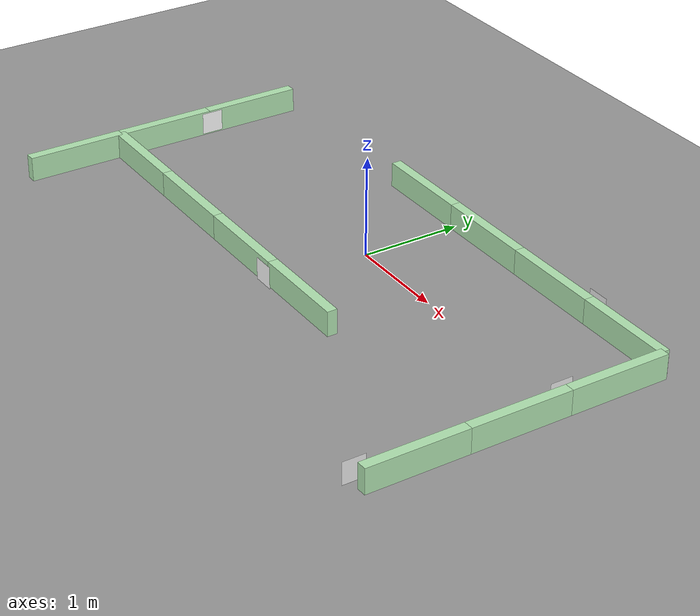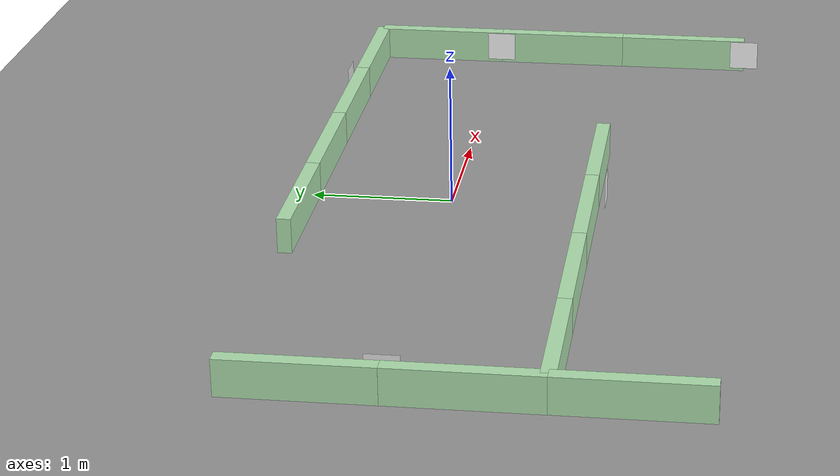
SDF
<sdf version="1.6">
 <world name="default">
  <model name="ground_plane_0">
   <static>1</static>
   <link name="link">
    <collision name="collision">
     <geometry><plane><normal>0 0 1</normal><size>100 100</size></plane></geometry>
     <surface><friction><ode><mu>100</mu><mu2>50</mu2></ode></friction></surface>
    </collision>
    <visual name="visual">
     <cast_shadows>0</cast_shadows>
     <geometry><plane><normal>0 0 1</normal><size>100 100</size></plane></geometry>
     <material>
      <script><uri>file://media/materials/scripts/gazebo.material</uri><name>Gazebo/Grey</name></script>
     </material>
    </visual>
    <velocity_decay><linear>0</linear><angular>0</angular></velocity_decay>
   </link>
   <pose>0.497681 0 0 0 -0 0</pose>
  </model>
  <model name="wall_100_25h_1">
   <link name="link">
    <inertial>
     <mass>1</mass>
     <inertia>
      <ixx>0.166667</ixx>
      <ixy>0</ixy>
      <ixz>0</ixz>
      <iyy>0.166667</iyy>
      <iyz>0</iyz>
      <izz>0.166667</izz>
     </inertia>
    </inertial>
    <visual name="visual">
     <geometry><box><size>1 0.1 0.25</size></box></geometry>
     <material>
      <script><name>Gazebo/Grey</name><uri>file://media/materials/scripts/gazebo.material</uri></script>
      <ambient>0.3 0.5 0.3 1</ambient>
      <diffuse>0.7 0.9 0.7 1</diffuse>
      <specular>0.01 0.02 0.01 1</specular>
      <emissive>0 0 0 1</emissive>
      <lighting>1</lighting>
      <shader type="vertex"><normal_map>__default__</normal_map></shader>
     </material>
    </visual>
    <collision name="collision">
     <geometry><box><size>1 0.1 0.25</size></box></geometry>
     <surface>
      <friction>
       <ode><mu>1</mu><mu2>1</mu2><fdir1>0 0 0</fdir1><slip1>0</slip1><slip2>0</slip2></ode>
       <torsional>
        <coefficient>1</coefficient>
        <patch_radius>0</patch_radius>
        <surface_radius>0</surface_radius>
        <use_patch_radius>1</use_patch_radius>
        <ode><slip>0</slip></ode>
       </torsional>
      </friction>
      <bounce><restitution_coefficient>0</restitution_coefficient><threshold>1e+06</threshold></bounce>
      <contact>
       <collide_without_contact>0</collide_without_contact>
       <collide_without_contact_bitmask>1</collide_without_contact_bitmask>
       <collide_bitmask>1</collide_bitmask>
       <ode>
        <soft_cfm>0</soft_cfm>
        <soft_erp>0.2</soft_erp>
        <kp>1e+13</kp>
        <kd>1</kd>
        <max_vel>0.01</max_vel>
        <min_depth>0</min_depth>
       </ode>
       <bullet>
        <split_impulse>1</split_impulse>
        <split_impulse_penetration_threshold>-0.01</split_impulse_penetration_threshold>
        <soft_cfm>0</soft_cfm>
        <soft_erp>0.2</soft_erp>
        <kp>1e+13</kp>
        <kd>1</kd>
       </bullet>
      </contact>
     </surface>
    </collision>
   </link>
   <static>1</static>
   <pose>-0.5 1 0.125 0.000404 -0 0</pose>
  </model>
  <model name="wall_100_25h_1_clone">
   <link name="link">
    <inertial>
     <mass>1</mass>
     <inertia>
      <ixx>0.166667</ixx>
      <ixy>0</ixy>
      <ixz>0</ixz>
      <iyy>0.166667</iyy>
      <iyz>0</iyz>
      <izz>0.166667</izz>
     </inertia>
    </inertial>
    <visual name="visual">
     <geometry><box><size>1 0.1 0.25</size></box></geometry>
     <material>
      <script><name>Gazebo/Grey</name><uri>file://media/materials/scripts/gazebo.material</uri></script>
      <ambient>0.3 0.5 0.3 1</ambient>
      <diffuse>0.7 0.9 0.7 1</diffuse>
      <specular>0.01 0.02 0.01 1</specular>
      <emissive>0 0 0 1</emissive>
      <lighting>1</lighting>
      <shader type="vertex"><normal_map>__default__</normal_map></shader>
     </material>
    </visual>
    <collision name="collision">
     <geometry><box><size>1 0.1 0.25</size></box></geometry>
     <surface>
      <friction>
       <ode><mu>1</mu><mu2>1</mu2><fdir1>0 0 0</fdir1><slip1>0</slip1><slip2>0</slip2></ode>
       <torsional>
        <coefficient>1</coefficient>
        <patch_radius>0</patch_radius>
        <surface_radius>0</surface_radius>
        <use_patch_radius>1</use_patch_radius>
        <ode><slip>0</slip></ode>
       </torsional>
      </friction>
      <bounce><restitution_coefficient>0</restitution_coefficient><threshold>1e+06</threshold></bounce>
      <contact>
       <collide_without_contact>0</collide_without_contact>
       <collide_without_contact_bitmask>1</collide_without_contact_bitmask>
       <collide_bitmask>1</collide_bitmask>
       <ode>
        <soft_cfm>0</soft_cfm>
        <soft_erp>0.2</soft_erp>
        <kp>1e+13</kp>
        <kd>1</kd>
        <max_vel>0.01</max_vel>
        <min_depth>0</min_depth>
       </ode>
       <bullet>
        <split_impulse>1</split_impulse>
        <split_impulse_penetration_threshold>-0.01</split_impulse_penetration_threshold>
        <soft_cfm>0</soft_cfm>
        <soft_erp>0.2</soft_erp>
        <kp>1e+13</kp>
        <kd>1</kd>
       </bullet>
      </contact>
     </surface>
    </collision>
   </link>
   <static>1</static>
   <pose>0.5 1 0.125 0 -0 0</pose>
  </model>
  <model name="wall_100_25h_1_clone_0">
   <link name="link">
    <inertial>
     <mass>1</mass>
     <inertia>
      <ixx>0.166667</ixx>
      <ixy>0</ixy>
      <ixz>0</ixz>
      <iyy>0.166667</iyy>
      <iyz>0</iyz>
      <izz>0.166667</izz>
     </inertia>
    </inertial>
    <visual name="visual">
     <geometry><box><size>1 0.1 0.25</size></box></geometry>
     <material>
      <script><name>Gazebo/Grey</name><uri>file://media/materials/scripts/gazebo.material</uri></script>
      <ambient>0.3 0.5 0.3 1</ambient>
      <diffuse>0.7 0.9 0.7 1</diffuse>
      <specular>0.01 0.02 0.01 1</specular>
      <emissive>0 0 0 1</emissive>
      <lighting>1</lighting>
      <shader type="vertex"><normal_map>__default__</normal_map></shader>
     </material>
    </visual>
    <collision name="collision">
     <geometry><box><size>1 0.1 0.25</size></box></geometry>
     <surface>
      <friction>
       <ode><mu>1</mu><mu2>1</mu2><fdir1>0 0 0</fdir1><slip1>0</slip1><slip2>0</slip2></ode>
       <torsional>
        <coefficient>1</coefficient>
        <patch_radius>0</patch_radius>
        <surface_radius>0</surface_radius>
        <use_patch_radius>1</use_patch_radius>
        <ode><slip>0</slip></ode>
       </torsional>
      </friction>
      <bounce><restitution_coefficient>0</restitution_coefficient><threshold>1e+06</threshold></bounce>
      <contact>
       <collide_without_contact>0</collide_without_contact>
       <collide_without_contact_bitmask>1</collide_without_contact_bitmask>
       <collide_bitmask>1</collide_bitmask>
       <ode>
        <soft_cfm>0</soft_cfm>
        <soft_erp>0.2</soft_erp>
        <kp>1e+13</kp>
        <kd>1</kd>
        <max_vel>0.01</max_vel>
        <min_depth>0</min_depth>
       </ode>
       <bullet>
        <split_impulse>1</split_impulse>
        <split_impulse_penetration_threshold>-0.01</split_impulse_penetration_threshold>
        <soft_cfm>0</soft_cfm>
        <soft_erp>0.2</soft_erp>
        <kp>1e+13</kp>
        <kd>1</kd>
       </bullet>
      </contact>
     </surface>
    </collision>
   </link>
   <static>1</static>
   <pose>1.5 1 0.125 0.000404 -0 0</pose>
  </model>
  <model name="wall_100_25h_1_clone_1">
   <link name="link">
    <inertial>
     <mass>1</mass>
     <inertia>
      <ixx>0.166667</ixx>
      <ixy>0</ixy>
      <ixz>0</ixz>
      <iyy>0.166667</iyy>
      <iyz>0</iyz>
      <izz>0.166667</izz>
     </inertia>
    </inertial>
    <visual name="visual">
     <geometry><box><size>1 0.1 0.25</size></box></geometry>
     <material>
      <script><name>Gazebo/Grey</name><uri>file://media/materials/scripts/gazebo.material</uri></script>
      <ambient>0.3 0.5 0.3 1</ambient>
      <diffuse>0.7 0.9 0.7 1</diffuse>
      <specular>0.01 0.02 0.01 1</specular>
      <emissive>0 0 0 1</emissive>
      <lighting>1</lighting>
      <shader type="vertex"><normal_map>__default__</normal_map></shader>
     </material>
    </visual>
    <collision name="collision">
     <geometry><box><size>1 0.1 0.25</size></box></geometry>
     <surface>
      <friction>
       <ode><mu>1</mu><mu2>1</mu2><fdir1>0 0 0</fdir1><slip1>0</slip1><slip2>0</slip2></ode>
       <torsional>
        <coefficient>1</coefficient>
        <patch_radius>0</patch_radius>
        <surface_radius>0</surface_radius>
        <use_patch_radius>1</use_patch_radius>
        <ode><slip>0</slip></ode>
       </torsional>
      </friction>
      <bounce><restitution_coefficient>0</restitution_coefficient><threshold>1e+06</threshold></bounce>
      <contact>
       <collide_without_contact>0</collide_without_contact>
       <collide_without_contact_bitmask>1</collide_without_contact_bitmask>
       <collide_bitmask>1</collide_bitmask>
       <ode>
        <soft_cfm>0</soft_cfm>
        <soft_erp>0.2</soft_erp>
        <kp>1e+13</kp>
        <kd>1</kd>
        <max_vel>0.01</max_vel>
        <min_depth>0</min_depth>
       </ode>
       <bullet>
        <split_impulse>1</split_impulse>
        <split_impulse_penetration_threshold>-0.01</split_impulse_penetration_threshold>
        <soft_cfm>0</soft_cfm>
        <soft_erp>0.2</soft_erp>
        <kp>1e+13</kp>
        <kd>1</kd>
       </bullet>
      </contact>
     </surface>
    </collision>
   </link>
   <static>1</static>
   <pose>-0.5 -1 0.125 0.000404 -0 0</pose>
  </model>
  <model name="wall_100_25h_1_clone_2">
   <link name="link">
    <inertial>
     <mass>1</mass>
     <inertia>
      <ixx>0.166667</ixx>
      <ixy>0</ixy>
      <ixz>0</ixz>
      <iyy>0.166667</iyy>
      <iyz>0</iyz>
      <izz>0.166667</izz>
     </inertia>
    </inertial>
    <visual name="visual">
     <geometry><box><size>1 0.1 0.25</size></box></geometry>
     <material>
      <script><name>Gazebo/Grey</name><uri>file://media/materials/scripts/gazebo.material</uri></script>
      <ambient>0.3 0.5 0.3 1</ambient>
      <diffuse>0.7 0.9 0.7 1</diffuse>
      <specular>0.01 0.02 0.01 1</specular>
      <emissive>0 0 0 1</emissive>
      <lighting>1</lighting>
      <shader type="vertex"><normal_map>__default__</normal_map></shader>
     </material>
    </visual>
    <collision name="collision">
     <geometry><box><size>1 0.1 0.25</size></box></geometry>
     <surface>
      <friction>
       <ode><mu>1</mu><mu2>1</mu2><fdir1>0 0 0</fdir1><slip1>0</slip1><slip2>0</slip2></ode>
       <torsional>
        <coefficient>1</coefficient>
        <patch_radius>0</patch_radius>
        <surface_radius>0</surface_radius>
        <use_patch_radius>1</use_patch_radius>
        <ode><slip>0</slip></ode>
       </torsional>
      </friction>
      <bounce><restitution_coefficient>0</restitution_coefficient><threshold>1e+06</threshold></bounce>
      <contact>
       <collide_without_contact>0</collide_without_contact>
       <collide_without_contact_bitmask>1</collide_without_contact_bitmask>
       <collide_bitmask>1</collide_bitmask>
       <ode>
        <soft_cfm>0</soft_cfm>
        <soft_erp>0.2</soft_erp>
        <kp>1e+13</kp>
        <kd>1</kd>
        <max_vel>0.01</max_vel>
        <min_depth>0</min_depth>
       </ode>
       <bullet>
        <split_impulse>1</split_impulse>
        <split_impulse_penetration_threshold>-0.01</split_impulse_penetration_threshold>
        <soft_cfm>0</soft_cfm>
        <soft_erp>0.2</soft_erp>
        <kp>1e+13</kp>
        <kd>1</kd>
       </bullet>
      </contact>
     </surface>
    </collision>
   </link>
   <static>1</static>
   <pose>0.5 -1 0.125 0.000404 -0 0</pose>
  </model>
  <model name="wall_100_25h_1_clone_7">
   <link name="link">
    <inertial>
     <mass>1</mass>
     <inertia>
      <ixx>0.166667</ixx>
      <ixy>0</ixy>
      <ixz>0</ixz>
      <iyy>0.166667</iyy>
      <iyz>0</iyz>
      <izz>0.166667</izz>
     </inertia>
    </inertial>
    <visual name="visual">
     <geometry><box><size>1 0.1 0.25</size></box></geometry>
     <material>
      <script><name>Gazebo/Grey</name><uri>file://media/materials/scripts/gazebo.material</uri></script>
      <ambient>0.3 0.5 0.3 1</ambient>
      <diffuse>0.7 0.9 0.7 1</diffuse>
      <specular>0.01 0.02 0.01 1</specular>
      <emissive>0 0 0 1</emissive>
      <lighting>1</lighting>
      <shader type="vertex"><normal_map>__default__</normal_map></shader>
     </material>
    </visual>
    <collision name="collision">
     <geometry><box><size>1 0.1 0.25</size></box></geometry>
     <surface>
      <friction>
       <ode><mu>1</mu><mu2>1</mu2><fdir1>0 0 0</fdir1><slip1>0</slip1><slip2>0</slip2></ode>
       <torsional>
        <coefficient>1</coefficient>
        <patch_radius>0</patch_radius>
        <surface_radius>0</surface_radius>
        <use_patch_radius>1</use_patch_radius>
        <ode><slip>0</slip></ode>
       </torsional>
      </friction>
      <bounce><restitution_coefficient>0</restitution_coefficient><threshold>1e+06</threshold></bounce>
      <contact>
       <collide_without_contact>0</collide_without_contact>
       <collide_without_contact_bitmask>1</collide_without_contact_bitmask>
       <collide_bitmask>1</collide_bitmask>
       <ode>
        <soft_cfm>0</soft_cfm>
        <soft_erp>0.2</soft_erp>
        <kp>1e+13</kp>
        <kd>1</kd>
        <max_vel>0.01</max_vel>
        <min_depth>0</min_depth>
       </ode>
       <bullet>
        <split_impulse>1</split_impulse>
        <split_impulse_penetration_threshold>-0.01</split_impulse_penetration_threshold>
        <soft_cfm>0</soft_cfm>
        <soft_erp>0.2</soft_erp>
        <kp>1e+13</kp>
        <kd>1</kd>
       </bullet>
      </contact>
     </surface>
    </collision>
   </link>
   <static>1</static>
   <pose>2.5 1 0.125 0.000404 -0 0</pose>
  </model>
  <model name="wall_100_25h_1_clone_8">
   <link name="link">
    <inertial>
     <mass>1</mass>
     <inertia>
      <ixx>0.166667</ixx>
      <ixy>0</ixy>
      <ixz>0</ixz>
      <iyy>0.166667</iyy>
      <iyz>0</iyz>
      <izz>0.166667</izz>
     </inertia>
    </inertial>
    <visual name="visual">
     <geometry><box><size>1 0.1 0.25</size></box></geometry>
     <material>
      <script><name>Gazebo/Grey</name><uri>file://media/materials/scripts/gazebo.material</uri></script>
      <ambient>0.3 0.5 0.3 1</ambient>
      <diffuse>0.7 0.9 0.7 1</diffuse>
      <specular>0.01 0.02 0.01 1</specular>
      <emissive>0 0 0 1</emissive>
      <lighting>1</lighting>
      <shader type="vertex"><normal_map>__default__</normal_map></shader>
     </material>
    </visual>
    <collision name="collision">
     <geometry><box><size>1 0.1 0.25</size></box></geometry>
     <surface>
      <friction>
       <ode><mu>1</mu><mu2>1</mu2><fdir1>0 0 0</fdir1><slip1>0</slip1><slip2>0</slip2></ode>
       <torsional>
        <coefficient>1</coefficient>
        <patch_radius>0</patch_radius>
        <surface_radius>0</surface_radius>
        <use_patch_radius>1</use_patch_radius>
        <ode><slip>0</slip></ode>
       </torsional>
      </friction>
      <bounce><restitution_coefficient>0</restitution_coefficient><threshold>1e+06</threshold></bounce>
      <contact>
       <collide_without_contact>0</collide_without_contact>
       <collide_without_contact_bitmask>1</collide_without_contact_bitmask>
       <collide_bitmask>1</collide_bitmask>
       <ode>
        <soft_cfm>0</soft_cfm>
        <soft_erp>0.2</soft_erp>
        <kp>1e+13</kp>
        <kd>1</kd>
        <max_vel>0.01</max_vel>
        <min_depth>0</min_depth>
       </ode>
       <bullet>
        <split_impulse>1</split_impulse>
        <split_impulse_penetration_threshold>-0.01</split_impulse_penetration_threshold>
        <soft_cfm>0</soft_cfm>
        <soft_erp>0.2</soft_erp>
        <kp>1e+13</kp>
        <kd>1</kd>
       </bullet>
      </contact>
     </surface>
    </collision>
   </link>
   <static>1</static>
   <pose>-1.5 -1 0.125 0.000404 -0 0</pose>
  </model>
  <model name="wall_100_25h_1_clone_9">
   <link name="link">
    <inertial>
     <mass>1</mass>
     <inertia>
      <ixx>0.166667</ixx>
      <ixy>0</ixy>
      <ixz>0</ixz>
      <iyy>0.166667</iyy>
      <iyz>0</iyz>
      <izz>0.166667</izz>
     </inertia>
    </inertial>
    <visual name="visual">
     <geometry><box><size>1 0.1 0.25</size></box></geometry>
     <material>
      <script><name>Gazebo/Grey</name><uri>file://media/materials/scripts/gazebo.material</uri></script>
      <ambient>0.3 0.5 0.3 1</ambient>
      <diffuse>0.7 0.9 0.7 1</diffuse>
      <specular>0.01 0.02 0.01 1</specular>
      <emissive>0 0 0 1</emissive>
      <lighting>1</lighting>
      <shader type="vertex"><normal_map>__default__</normal_map></shader>
     </material>
    </visual>
    <collision name="collision">
     <geometry><box><size>1 0.1 0.25</size></box></geometry>
     <surface>
      <friction>
       <ode><mu>1</mu><mu2>1</mu2><fdir1>0 0 0</fdir1><slip1>0</slip1><slip2>0</slip2></ode>
       <torsional>
        <coefficient>1</coefficient>
        <patch_radius>0</patch_radius>
        <surface_radius>0</surface_radius>
        <use_patch_radius>1</use_patch_radius>
        <ode><slip>0</slip></ode>
       </torsional>
      </friction>
      <bounce><restitution_coefficient>0</restitution_coefficient><threshold>1e+06</threshold></bounce>
      <contact>
       <collide_without_contact>0</collide_without_contact>
       <collide_without_contact_bitmask>1</collide_without_contact_bitmask>
       <collide_bitmask>1</collide_bitmask>
       <ode>
        <soft_cfm>0</soft_cfm>
        <soft_erp>0.2</soft_erp>
        <kp>1e+13</kp>
        <kd>1</kd>
        <max_vel>0.01</max_vel>
        <min_depth>0</min_depth>
       </ode>
       <bullet>
        <split_impulse>1</split_impulse>
        <split_impulse_penetration_threshold>-0.01</split_impulse_penetration_threshold>
        <soft_cfm>0</soft_cfm>
        <soft_erp>0.2</soft_erp>
        <kp>1e+13</kp>
        <kd>1</kd>
       </bullet>
      </contact>
     </surface>
    </collision>
   </link>
   <static>1</static>
   <pose>-2.5 -1 0.125 0.000404 -0 0</pose>
  </model>
  <model name="wall_100_25h_1_clone_9_clone">
   <link name="link">
    <inertial>
     <mass>1</mass>
     <inertia>
      <ixx>0.166667</ixx>
      <ixy>0</ixy>
      <ixz>0</ixz>
      <iyy>0.166667</iyy>
      <iyz>0</iyz>
      <izz>0.166667</izz>
     </inertia>
    </inertial>
    <visual name="visual">
     <geometry><box><size>1 0.1 0.25</size></box></geometry>
     <material>
      <script><name>Gazebo/Grey</name><uri>file://media/materials/scripts/gazebo.material</uri></script>
      <ambient>0.3 0.5 0.3 1</ambient>
      <diffuse>0.7 0.9 0.7 1</diffuse>
      <specular>0.01 0.02 0.01 1</specular>
      <emissive>0 0 0 1</emissive>
      <lighting>1</lighting>
      <shader type="vertex"><normal_map>__default__</normal_map></shader>
     </material>
    </visual>
    <collision name="collision">
     <geometry><box><size>1 0.1 0.25</size></box></geometry>
     <surface>
      <friction>
       <ode><mu>1</mu><mu2>1</mu2><fdir1>0 0 0</fdir1><slip1>0</slip1><slip2>0</slip2></ode>
       <torsional>
        <coefficient>1</coefficient>
        <patch_radius>0</patch_radius>
        <surface_radius>0</surface_radius>
        <use_patch_radius>1</use_patch_radius>
        <ode><slip>0</slip></ode>
       </torsional>
      </friction>
      <bounce><restitution_coefficient>0</restitution_coefficient><threshold>1e+06</threshold></bounce>
      <contact>
       <collide_without_contact>0</collide_without_contact>
       <collide_without_contact_bitmask>1</collide_without_contact_bitmask>
       <collide_bitmask>1</collide_bitmask>
       <ode>
        <soft_cfm>0</soft_cfm>
        <soft_erp>0.2</soft_erp>
        <kp>1e+13</kp>
        <kd>1</kd>
        <max_vel>0.01</max_vel>
        <min_depth>0</min_depth>
       </ode>
       <bullet>
        <split_impulse>1</split_impulse>
        <split_impulse_penetration_threshold>-0.01</split_impulse_penetration_threshold>
        <soft_cfm>0</soft_cfm>
        <soft_erp>0.2</soft_erp>
        <kp>1e+13</kp>
        <kd>1</kd>
       </bullet>
      </contact>
     </surface>
    </collision>
   </link>
   <static>1</static>
   <pose>-3 -1.5 0.125 0 0.000404 -1.57111</pose>
  </model>
  <model name="wall_100_25h_1_clone_9_clone_clone_5">
   <link name="link">
    <inertial>
     <mass>1</mass>
     <inertia>
      <ixx>0.166667</ixx>
      <ixy>0</ixy>
      <ixz>0</ixz>
      <iyy>0.166667</iyy>
      <iyz>0</iyz>
      <izz>0.166667</izz>
     </inertia>
    </inertial>
    <visual name="visual">
     <geometry><box><size>1 0.1 0.25</size></box></geometry>
     <material>
      <script><name>Gazebo/Grey</name><uri>file://media/materials/scripts/gazebo.material</uri></script>
      <ambient>0.3 0.5 0.3 1</ambient>
      <diffuse>0.7 0.9 0.7 1</diffuse>
      <specular>0.01 0.02 0.01 1</specular>
      <emissive>0 0 0 1</emissive>
      <lighting>1</lighting>
      <shader type="vertex"><normal_map>__default__</normal_map></shader>
     </material>
    </visual>
    <collision name="collision">
     <geometry><box><size>1 0.1 0.25</size></box></geometry>
     <surface>
      <friction>
       <ode><mu>1</mu><mu2>1</mu2><fdir1>0 0 0</fdir1><slip1>0</slip1><slip2>0</slip2></ode>
       <torsional>
        <coefficient>1</coefficient>
        <patch_radius>0</patch_radius>
        <surface_radius>0</surface_radius>
        <use_patch_radius>1</use_patch_radius>
        <ode><slip>0</slip></ode>
       </torsional>
      </friction>
      <bounce><restitution_coefficient>0</restitution_coefficient><threshold>1e+06</threshold></bounce>
      <contact>
       <collide_without_contact>0</collide_without_contact>
       <collide_without_contact_bitmask>1</collide_without_contact_bitmask>
       <collide_bitmask>1</collide_bitmask>
       <ode>
        <soft_cfm>0</soft_cfm>
        <soft_erp>0.2</soft_erp>
        <kp>1e+13</kp>
        <kd>1</kd>
        <max_vel>0.01</max_vel>
        <min_depth>0</min_depth>
       </ode>
       <bullet>
        <split_impulse>1</split_impulse>
        <split_impulse_penetration_threshold>-0.01</split_impulse_penetration_threshold>
        <soft_cfm>0</soft_cfm>
        <soft_erp>0.2</soft_erp>
        <kp>1e+13</kp>
        <kd>1</kd>
       </bullet>
      </contact>
     </surface>
    </collision>
   </link>
   <static>1</static>
   <pose>3 -1.5 0.125 0 0.000404 -1.57111</pose>
  </model>
  <model name="wall_100_25h_1_clone_9_clone_clone_6">
   <link name="link">
    <inertial>
     <mass>1</mass>
     <inertia>
      <ixx>0.166667</ixx>
      <ixy>0</ixy>
      <ixz>0</ixz>
      <iyy>0.166667</iyy>
      <iyz>0</iyz>
      <izz>0.166667</izz>
     </inertia>
    </inertial>
    <visual name="visual">
     <geometry><box><size>1 0.1 0.25</size></box></geometry>
     <material>
      <script><name>Gazebo/Grey</name><uri>file://media/materials/scripts/gazebo.material</uri></script>
      <ambient>0.3 0.5 0.3 1</ambient>
      <diffuse>0.7 0.9 0.7 1</diffuse>
      <specular>0.01 0.02 0.01 1</specular>
      <emissive>0 0 0 1</emissive>
      <lighting>1</lighting>
      <shader type="vertex"><normal_map>__default__</normal_map></shader>
     </material>
    </visual>
    <collision name="collision">
     <geometry><box><size>1 0.1 0.25</size></box></geometry>
     <surface>
      <friction>
       <ode><mu>1</mu><mu2>1</mu2><fdir1>0 0 0</fdir1><slip1>0</slip1><slip2>0</slip2></ode>
       <torsional>
        <coefficient>1</coefficient>
        <patch_radius>0</patch_radius>
        <surface_radius>0</surface_radius>
        <use_patch_radius>1</use_patch_radius>
        <ode><slip>0</slip></ode>
       </torsional>
      </friction>
      <bounce><restitution_coefficient>0</restitution_coefficient><threshold>1e+06</threshold></bounce>
      <contact>
       <collide_without_contact>0</collide_without_contact>
       <collide_without_contact_bitmask>1</collide_without_contact_bitmask>
       <collide_bitmask>1</collide_bitmask>
       <ode>
        <soft_cfm>0</soft_cfm>
        <soft_erp>0.2</soft_erp>
        <kp>1e+13</kp>
        <kd>1</kd>
        <max_vel>0.01</max_vel>
        <min_depth>0</min_depth>
       </ode>
       <bullet>
        <split_impulse>1</split_impulse>
        <split_impulse_penetration_threshold>-0.01</split_impulse_penetration_threshold>
        <soft_cfm>0</soft_cfm>
        <soft_erp>0.2</soft_erp>
        <kp>1e+13</kp>
        <kd>1</kd>
       </bullet>
      </contact>
     </surface>
    </collision>
   </link>
   <static>1</static>
   <pose>3 -0.5 0.125 0 0.000404 -1.57111</pose>
  </model>
  <model name="wall_100_25h_1_clone_9_clone_clone_7">
   <link name="link">
    <inertial>
     <mass>1</mass>
     <inertia>
      <ixx>0.166667</ixx>
      <ixy>0</ixy>
      <ixz>0</ixz>
      <iyy>0.166667</iyy>
      <iyz>0</iyz>
      <izz>0.166667</izz>
     </inertia>
    </inertial>
    <visual name="visual">
     <geometry><box><size>1 0.1 0.25</size></box></geometry>
     <material>
      <script><name>Gazebo/Grey</name><uri>file://media/materials/scripts/gazebo.material</uri></script>
      <ambient>0.3 0.5 0.3 1</ambient>
      <diffuse>0.7 0.9 0.7 1</diffuse>
      <specular>0.01 0.02 0.01 1</specular>
      <emissive>0 0 0 1</emissive>
      <lighting>1</lighting>
      <shader type="vertex"><normal_map>__default__</normal_map></shader>
     </material>
    </visual>
    <collision name="collision">
     <geometry><box><size>1 0.1 0.25</size></box></geometry>
     <surface>
      <friction>
       <ode><mu>1</mu><mu2>1</mu2><fdir1>0 0 0</fdir1><slip1>0</slip1><slip2>0</slip2></ode>
       <torsional>
        <coefficient>1</coefficient>
        <patch_radius>0</patch_radius>
        <surface_radius>0</surface_radius>
        <use_patch_radius>1</use_patch_radius>
        <ode><slip>0</slip></ode>
       </torsional>
      </friction>
      <bounce><restitution_coefficient>0</restitution_coefficient><threshold>1e+06</threshold></bounce>
      <contact>
       <collide_without_contact>0</collide_without_contact>
       <collide_without_contact_bitmask>1</collide_without_contact_bitmask>
       <collide_bitmask>1</collide_bitmask>
       <ode>
        <soft_cfm>0</soft_cfm>
        <soft_erp>0.2</soft_erp>
        <kp>1e+13</kp>
        <kd>1</kd>
        <max_vel>0.01</max_vel>
        <min_depth>0</min_depth>
       </ode>
       <bullet>
        <split_impulse>1</split_impulse>
        <split_impulse_penetration_threshold>-0.01</split_impulse_penetration_threshold>
        <soft_cfm>0</soft_cfm>
        <soft_erp>0.2</soft_erp>
        <kp>1e+13</kp>
        <kd>1</kd>
       </bullet>
      </contact>
     </surface>
    </collision>
   </link>
   <static>1</static>
   <pose>3 0.5 0.125 0 0.000404 -1.57111</pose>
  </model>
  <model name="wall_100_25h_1_clone_9_clone_clone_10">
   <link name="link">
    <inertial>
     <mass>1</mass>
     <inertia>
      <ixx>0.166667</ixx>
      <ixy>0</ixy>
      <ixz>0</ixz>
      <iyy>0.166667</iyy>
      <iyz>0</iyz>
      <izz>0.166667</izz>
     </inertia>
    </inertial>
    <visual name="visual">
     <geometry><box><size>1 0.1 0.25</size></box></geometry>
     <material>
      <script><name>Gazebo/Grey</name><uri>file://media/materials/scripts/gazebo.material</uri></script>
      <ambient>0.3 0.5 0.3 1</ambient>
      <diffuse>0.7 0.9 0.7 1</diffuse>
      <specular>0.01 0.02 0.01 1</specular>
      <emissive>0 0 0 1</emissive>
      <lighting>1</lighting>
      <shader type="vertex"><normal_map>__default__</normal_map></shader>
     </material>
    </visual>
    <collision name="collision">
     <geometry><box><size>1 0.1 0.25</size></box></geometry>
     <surface>
      <friction>
       <ode><mu>1</mu><mu2>1</mu2><fdir1>0 0 0</fdir1><slip1>0</slip1><slip2>0</slip2></ode>
       <torsional>
        <coefficient>1</coefficient>
        <patch_radius>0</patch_radius>
        <surface_radius>0</surface_radius>
        <use_patch_radius>1</use_patch_radius>
        <ode><slip>0</slip></ode>
       </torsional>
      </friction>
      <bounce><restitution_coefficient>0</restitution_coefficient><threshold>1e+06</threshold></bounce>
      <contact>
       <collide_without_contact>0</collide_without_contact>
       <collide_without_contact_bitmask>1</collide_without_contact_bitmask>
       <collide_bitmask>1</collide_bitmask>
       <ode>
        <soft_cfm>0</soft_cfm>
        <soft_erp>0.2</soft_erp>
        <kp>1e+13</kp>
        <kd>1</kd>
        <max_vel>0.01</max_vel>
        <min_depth>0</min_depth>
       </ode>
       <bullet>
        <split_impulse>1</split_impulse>
        <split_impulse_penetration_threshold>-0.01</split_impulse_penetration_threshold>
        <soft_cfm>0</soft_cfm>
        <soft_erp>0.2</soft_erp>
        <kp>1e+13</kp>
        <kd>1</kd>
       </bullet>
      </contact>
     </surface>
    </collision>
   </link>
   <static>1</static>
   <pose>-3 -0.5 0.125 0 0.000404 -1.57111</pose>
  </model>
  <model name="wall_100_25h_1_clone_9_clone_clone_11">
   <link name="link">
    <inertial>
     <mass>1</mass>
     <inertia>
      <ixx>0.166667</ixx>
      <ixy>0</ixy>
      <ixz>0</ixz>
      <iyy>0.166667</iyy>
      <iyz>0</iyz>
      <izz>0.166667</izz>
     </inertia>
    </inertial>
    <visual name="visual">
     <geometry><box><size>1 0.1 0.25</size></box></geometry>
     <material>
      <script><name>Gazebo/Grey</name><uri>file://media/materials/scripts/gazebo.material</uri></script>
      <ambient>0.3 0.5 0.3 1</ambient>
      <diffuse>0.7 0.9 0.7 1</diffuse>
      <specular>0.01 0.02 0.01 1</specular>
      <emissive>0 0 0 1</emissive>
      <lighting>1</lighting>
      <shader type="vertex"><normal_map>__default__</normal_map></shader>
     </material>
    </visual>
    <collision name="collision">
     <geometry><box><size>1 0.1 0.25</size></box></geometry>
     <surface>
      <friction>
       <ode><mu>1</mu><mu2>1</mu2><fdir1>0 0 0</fdir1><slip1>0</slip1><slip2>0</slip2></ode>
       <torsional>
        <coefficient>1</coefficient>
        <patch_radius>0</patch_radius>
        <surface_radius>0</surface_radius>
        <use_patch_radius>1</use_patch_radius>
        <ode><slip>0</slip></ode>
       </torsional>
      </friction>
      <bounce><restitution_coefficient>0</restitution_coefficient><threshold>1e+06</threshold></bounce>
      <contact>
       <collide_without_contact>0</collide_without_contact>
       <collide_without_contact_bitmask>1</collide_without_contact_bitmask>
       <collide_bitmask>1</collide_bitmask>
       <ode>
        <soft_cfm>0</soft_cfm>
        <soft_erp>0.2</soft_erp>
        <kp>1e+13</kp>
        <kd>1</kd>
        <max_vel>0.01</max_vel>
        <min_depth>0</min_depth>
       </ode>
       <bullet>
        <split_impulse>1</split_impulse>
        <split_impulse_penetration_threshold>-0.01</split_impulse_penetration_threshold>
        <soft_cfm>0</soft_cfm>
        <soft_erp>0.2</soft_erp>
        <kp>1e+13</kp>
        <kd>1</kd>
       </bullet>
      </contact>
     </surface>
    </collision>
   </link>
   <static>1</static>
   <pose>-3 0.5 0.125 0 0.000404 -1.57111</pose>
  </model>
  <model name="aiil_hazard_flammablegas">
   <link name="marker">
    <visual name="visual">
     <geometry><box><size>0.222 0.222 1e-05</size></box></geometry>
     <material>
      <script>
       <uri>model://aiil_hazard_flammablegas/materials/scripts</uri>
       <uri>model://aiil_hazard_flammablegas/materials/textures</uri>
       <name>AIILHazardflammablegas/Marker</name>
      </script>
      <ambient>1 1 1 1</ambient>
      <diffuse>1 1 1 1</diffuse>
      <specular>0 0 0 1</specular>
      <emissive>1 1 1 0</emissive>
      <shader type="vertex"><normal_map>__default__</normal_map></shader>
     </material>
    </visual>
    <collision name="collision"><geometry><box><size>0.222 0.222 1e-05</size></box></geometry></collision>
   </link>
   <link name="marker_pad">
    <pose frame="marker">0 0 -1e-05 0 -0 0</pose>
    <visual name="visual">
     <geometry><box><size>0.222 0.222 1e-05</size></box></geometry>
     <material>
      <lighting>1</lighting>
      <script><uri>file://media/materials/scripts/gazebo.material</uri><name>Gazebo/White</name></script>
      <ambient>0.3 0.3 0.3 1</ambient>
      <diffuse>0.7 0.7 0.7 1</diffuse>
      <specular>0.01 0.01 0.01 1</specular>
      <emissive>1 1 1 0</emissive>
      <shader type="vertex"><normal_map>__default__</normal_map></shader>
     </material>
    </visual>
    <collision name="collision"><geometry><box><size>0.222 0.222 1e-05</size></box></geometry></collision>
   </link>
   <joint name="marker_JOINT_marker_pad" type="revolute">
    <parent>marker</parent>
    <child>marker_pad</child>
    <axis>
     <xyz>0 0 1</xyz>
     <limit><upper>0</upper><lower>0</lower></limit>
     <use_parent_model_frame>0</use_parent_model_frame>
     <dynamics><spring_reference>0</spring_reference><spring_stiffness>0</spring_stiffness></dynamics>
    </axis>
   </joint>
   <static>1</static>
   <pose>-2.9 0 0.15 -1.57 -1.57 -1.57</pose>
  </model>
  <model name="aiil_hazard_oxidizer">
   <link name="marker">
    <visual name="visual">
     <geometry><box><size>0.222 0.222 1e-05</size></box></geometry>
     <material>
      <script>
       <uri>model://aiil_hazard_oxidizer/materials/scripts</uri>
       <uri>model://aiil_hazard_oxidizer/materials/textures</uri>
       <name>AIILHazardoxidizer/Marker</name>
      </script>
      <ambient>1 1 1 1</ambient>
      <diffuse>1 1 1 1</diffuse>
      <specular>0 0 0 1</specular>
      <emissive>1 1 1 0</emissive>
      <shader type="vertex"><normal_map>__default__</normal_map></shader>
     </material>
    </visual>
    <collision name="collision"><geometry><box><size>0.222 0.222 1e-05</size></box></geometry></collision>
   </link>
   <link name="marker_pad">
    <pose frame="marker">0 0 -1e-05 0 -0 0</pose>
    <visual name="visual">
     <geometry><box><size>0.222 0.222 1e-05</size></box></geometry>
     <material>
      <lighting>1</lighting>
      <script><uri>file://media/materials/scripts/gazebo.material</uri><name>Gazebo/White</name></script>
      <ambient>0.3 0.3 0.3 1</ambient>
      <diffuse>0.7 0.7 0.7 1</diffuse>
      <specular>0.01 0.01 0.01 1</specular>
      <emissive>1 1 1 0</emissive>
      <shader type="vertex"><normal_map>__default__</normal_map></shader>
     </material>
    </visual>
    <collision name="collision"><geometry><box><size>0.222 0.222 1e-05</size></box></geometry></collision>
   </link>
   <joint name="marker_JOINT_marker_pad" type="revolute">
    <parent>marker</parent>
    <child>marker_pad</child>
    <axis>
     <xyz>0 0 1</xyz>
     <limit><upper>0</upper><lower>0</lower></limit>
     <use_parent_model_frame>0</use_parent_model_frame>
     <dynamics><spring_reference>0</spring_reference><spring_stiffness>0</spring_stiffness></dynamics>
    </axis>
   </joint>
   <static>1</static>
   <pose>2.9 0 0.15 -1.57 -1.57 1.57</pose>
  </model>
  <model name="aiil_hazard_poison">
   <link name="marker">
    <visual name="visual">
     <geometry><box><size>0.222 0.222 1e-05</size></box></geometry>
     <material>
      <script>
       <uri>model://aiil_hazard_poison/materials/scripts</uri>
       <uri>model://aiil_hazard_poison/materials/textures</uri>
       <name>AIILHazardpoison/Marker</name>
      </script>
      <ambient>1 1 1 1</ambient>
      <diffuse>1 1 1 1</diffuse>
      <specular>0 0 0 1</specular>
      <emissive>1 1 1 0</emissive>
      <shader type="vertex"><normal_map>__default__</normal_map></shader>
     </material>
    </visual>
    <collision name="collision"><geometry><box><size>0.222 0.222 1e-05</size></box></geometry></collision>
   </link>
   <link name="marker_pad">
    <pose frame="marker">0 0 -1e-05 0 -0 0</pose>
    <visual name="visual">
     <geometry><box><size>0.222 0.222 1e-05</size></box></geometry>
     <material>
      <lighting>1</lighting>
      <script><uri>file://media/materials/scripts/gazebo.material</uri><name>Gazebo/White</name></script>
      <ambient>0.3 0.3 0.3 1</ambient>
      <diffuse>0.7 0.7 0.7 1</diffuse>
      <specular>0.01 0.01 0.01 1</specular>
      <emissive>1 1 1 0</emissive>
      <shader type="vertex"><normal_map>__default__</normal_map></shader>
     </material>
    </visual>
    <collision name="collision"><geometry><box><size>0.222 0.222 1e-05</size></box></geometry></collision>
   </link>
   <joint name="marker_JOINT_marker_pad" type="revolute">
    <parent>marker</parent>
    <child>marker_pad</child>
    <axis>
     <xyz>0 0 1</xyz>
     <limit><upper>0</upper><lower>0</lower></limit>
     <use_parent_model_frame>0</use_parent_model_frame>
     <dynamics><spring_reference>0</spring_reference><spring_stiffness>0</spring_stiffness></dynamics>
    </axis>
   </joint>
   <static>1</static>
   <pose>2.9 -2 0.15 -1.57 -1.57 1.57</pose>
  </model>
  <model name="aiil_hazard_radioactive">
   <link name="marker">
    <visual name="visual">
     <geometry><box><size>0.222 0.222 1e-05</size></box></geometry>
     <material>
      <script>
       <uri>model://aiil_hazard_radioactive/materials/scripts</uri>
       <uri>model://aiil_hazard_radioactive/materials/textures</uri>
       <name>AIILHazardradioactive/Marker</name>
      </script>
      <ambient>1 1 1 1</ambient>
      <diffuse>1 1 1 1</diffuse>
      <specular>0 0 0 1</specular>
      <emissive>1 1 1 0</emissive>
      <shader type="vertex"><normal_map>__default__</normal_map></shader>
     </material>
    </visual>
    <collision name="collision"><geometry><box><size>0.222 0.222 1e-05</size></box></geometry></collision>
   </link>
   <link name="marker_pad">
    <pose frame="marker">0 0 -1e-05 0 -0 0</pose>
    <visual name="visual">
     <geometry><box><size>0.222 0.222 1e-05</size></box></geometry>
     <material>
      <lighting>1</lighting>
      <script><uri>file://media/materials/scripts/gazebo.material</uri><name>Gazebo/White</name></script>
      <ambient>0.3 0.3 0.3 1</ambient>
      <diffuse>0.7 0.7 0.7 1</diffuse>
      <specular>0.01 0.01 0.01 1</specular>
      <emissive>1 1 1 0</emissive>
      <shader type="vertex"><normal_map>__default__</normal_map></shader>
     </material>
    </visual>
    <collision name="collision"><geometry><box><size>0.222 0.222 1e-05</size></box></geometry></collision>
   </link>
   <joint name="marker_JOINT_marker_pad" type="revolute">
    <parent>marker</parent>
    <child>marker_pad</child>
    <axis>
     <xyz>0 0 1</xyz>
     <limit><upper>0</upper><lower>0</lower></limit>
     <use_parent_model_frame>0</use_parent_model_frame>
     <dynamics><spring_reference>0</spring_reference><spring_stiffness>0</spring_stiffness></dynamics>
    </axis>
   </joint>
   <static>1</static>
   <pose>2 1.1 0.15 -1.57 -1.57 0</pose>
  </model>
  <model name="aiil_hazard_flammablesolid">
   <link name="marker">
    <visual name="visual">
     <geometry><box><size>0.222 0.222 1e-05</size></box></geometry>
     <material>
      <script>
       <uri>model://aiil_hazard_flammablesolid/materials/scripts</uri>
       <uri>model://aiil_hazard_flammablesolid/materials/textures</uri>
       <name>AIILHazardflammablesolid/Marker</name>
      </script>
      <ambient>1 1 1 1</ambient>
      <diffuse>1 1 1 1</diffuse>
      <specular>0 0 0 1</specular>
      <emissive>1 1 1 0</emissive>
      <shader type="vertex"><normal_map>__default__</normal_map></shader>
     </material>
    </visual>
    <collision name="collision"><geometry><box><size>0.222 0.222 1e-05</size></box></geometry></collision>
   </link>
   <link name="marker_pad">
    <pose frame="marker">0 0 -1e-05 0 -0 0</pose>
    <visual name="visual">
     <geometry><box><size>0.222 0.222 1e-05</size></box></geometry>
     <material>
      <lighting>1</lighting>
      <script><uri>file://media/materials/scripts/gazebo.material</uri><name>Gazebo/White</name></script>
      <ambient>0.3 0.3 0.3 1</ambient>
      <diffuse>0.7 0.7 0.7 1</diffuse>
      <specular>0.01 0.01 0.01 1</specular>
      <emissive>1 1 1 0</emissive>
      <shader type="vertex"><normal_map>__default__</normal_map></shader>
     </material>
    </visual>
    <collision name="collision"><geometry><box><size>0.222 0.222 1e-05</size></box></geometry></collision>
   </link>
   <joint name="marker_JOINT_marker_pad" type="revolute">
    <parent>marker</parent>
    <child>marker_pad</child>
    <axis>
     <xyz>0 0 1</xyz>
     <limit><upper>0</upper><lower>0</lower></limit>
     <use_parent_model_frame>0</use_parent_model_frame>
     <dynamics><spring_reference>0</spring_reference><spring_stiffness>0</spring_stiffness></dynamics>
    </axis>
   </joint>
   <static>1</static>
   <pose>0 -1.1 0.15 1.57 -1.57 -0</pose>
  </model>
 </world>
</sdf>
